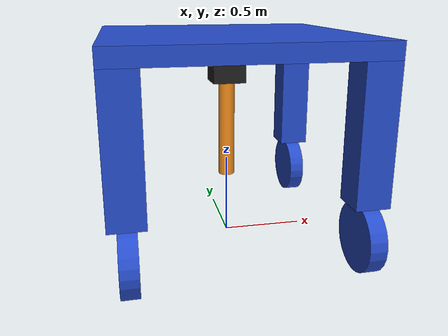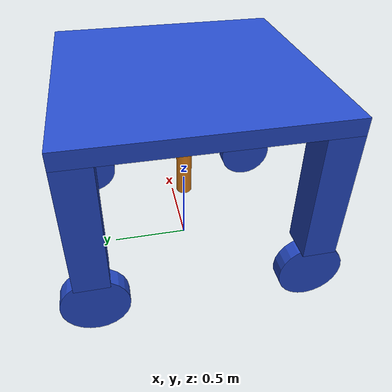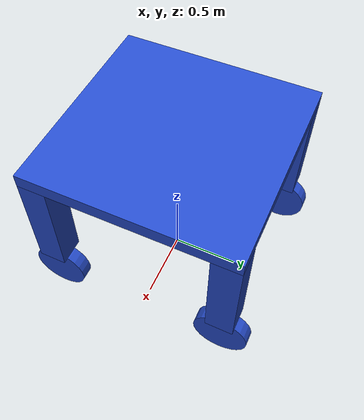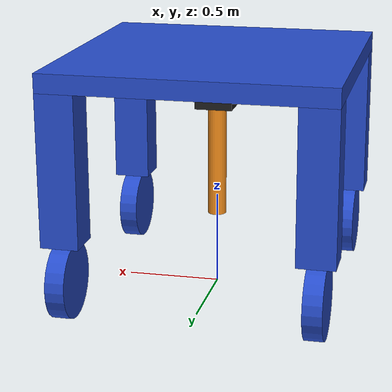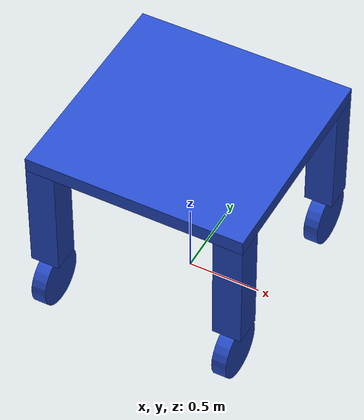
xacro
<?xml version="1.0"?>
<robot xmlns:xacro="http://www.ros.org/wiki/xacro" name="robot">
	<xacro:include filename="inertia.urdf.xacro" />
	<xacro:include filename="materials.urdf.xacro" />

	<link name="world"></link>

	<xacro:property name="height" value="1.2" />
	<joint name="base_joint" type="fixed">
		<origin xyz="0 0 1.2" rpy="0 0 0" />
		<parent link="world" />
		<child link="base_link" />
	</joint>

	<xacro:property name="base_w" value="1.5" />
	<xacro:property name="base_l" value="1.5" />
	<xacro:property name="base_h" value="0.1" />
	<xacro:property name="base_m" value="5" />
	<link name="base_link">
		<visual>
			<origin xyz="0 0 ${base_h/2}" rpy="0 0 0" />
			<geometry>
				<box size="${base_w} ${base_l} ${base_h}" />
			</geometry>
			<material name="blue"/>
		</visual>
		<collision>
			<origin xyz="0 0 ${base_h/2}" rpy="0 0 0" />
			<geometry>
				<box size="${base_w} ${base_l} ${base_h}" />
			</geometry>
		</collision>
		<inertial>
			<origin xyz="0 0 ${base_h/2}" rpy="0 0 0" />
			<mass value="${base_m}" />
			<xacro:box_inertia m="${base_m}" x="${base_w}" y="${base_l}" z="${base_h}" />
		</inertial>
	</link>

	<joint name="first_axis_joint" type="prismatic">
		<origin xyz="0 0 0" rpy="0 0 0" />
		<parent link="base_link" />
		<child link="first_axis_link" />
		<axis xyz="0 1 0" />
		<limit lower="${-base_l/2}" upper="${base_l/2}" velocity="100" effort="100" />
	</joint>

	<xacro:property name="first_w" value="0.2" />
	<xacro:property name="first_l" value="0.2" />
	<xacro:property name="first_h" value="0.2" />
	<xacro:property name="first_m" value="0.5" />
	<link name="first_axis_link">
		<visual>
			<origin xyz="0 0 ${-first_h/2}" rpy="0 0 0" />
			<geometry>
				<box size="${first_w} ${first_l} ${first_h}" />
			</geometry>
			<material name="black"/>
		</visual>
		<collision>
			<origin xyz="0 0 ${-first_h}" rpy="0 0 0" />
			<geometry>
				<box size="${first_w} ${first_l} ${first_h}" />
			</geometry>
		</collision>
		<inertial>
			<origin xyz="0 0 ${-first_h/2}" rpy="0 0 0" />
			<mass value="${first_m}" />
			<xacro:box_inertia m="${first_m}" x="${first_w}" y="${first_l}" z="${first_h}" />
		</inertial>
	</link>

	<joint name="second_axis_joint" type="revolute">
		<origin xyz="0 0 ${-first_h}" rpy="0 0 0" />
		<parent link="first_axis_link" />
		<child link="second_axis_link" />
		<axis xyz="0 1 0" />
		<limit lower="${-pi/2}" upper="${pi/2}" velocity="100" effort="100" />
	</joint>

	<xacro:property name="arm_length" value="0.6" />
	<xacro:property name="arm_radius" value="0.05" />
	<xacro:property name="arm_mass" value="1" />
	<link name="second_axis_link">
		<visual>
			<origin xyz="0 0 ${-arm_length/2}" rpy="0 0 0" />
			<geometry>
				<cylinder length="${arm_length}" radius="${arm_radius}" />
			</geometry>
			<material name="orange"/>
		</visual>
		<collision>
			<origin xyz="0 0 ${-arm_length/2}" rpy="0 0 0" />
			<geometry>
				<cylinder length="${arm_length}" radius="${arm_radius}" />
			</geometry>
		</collision>
		<inertial>
			<origin xyz="0 0 ${-arm_length/2}" rpy="0 0 0" />
			<mass value="${arm_mass}" />
			<xacro:cylinder_inertia m="${arm_mass}" r="${arm_radius}" h="${arm_length}" />
		</inertial>
	</link>

	<xacro:property name="arm2_radius" value="0.03" />
	<xacro:property name="arm2_length" value="0.5" />
	<xacro:property name="arm2_mass" value="0.5" />
	<joint name="third_axis_joint" type="prismatic">
		<origin xyz="0 0 ${-arm_length}" rpy="0 0 0" />
		<parent link="second_axis_link" />
		<child link="third_axis_link" />
		<axis xyz="0 0 -1" />
		<limit lower="0" upper="${arm2_length}" velocity="100" effort="100" />
	</joint>

	<link name="third_axis_link">
		<visual>
			<origin xyz="0 0 ${arm2_length/2}" rpy="0 0 0" />
			<geometry>
				<cylinder length="${arm2_length}" radius="${arm2_radius}" />
			</geometry>
			<material name="orange"/>
		</visual>
		<collision>
			<origin xyz="0 0 ${arm2_length/2}" rpy="0 0 0" />
			<geometry>
				<cylinder length="${arm2_length}" radius="${arm2_radius}" />
			</geometry>
		</collision>
		<inertial>
			<origin xyz="0 0 ${arm2_length/2}" rpy="0 0 0" />
			<mass value="${arm2_mass}" />
			<xacro:cylinder_inertia m="${arm2_mass}" r="${arm2_radius}" h="${arm2_length}" />
		</inertial>
	</link>

	<xacro:property name="top_w" value="0.2" />
	<xacro:property name="top_l" value="0.2" />
	<xacro:property name="wheel_r" value="0.2" />
	<xacro:property name="wheel_l" value="0.1" />
	<xacro:property name="wheel_m" value="5" />
	<xacro:property name="top_h" value="${height-2*wheel_r}" />
	<xacro:macro name="wheel" params="prefix x y">
		<joint name="${prefix}_wheel_joint" type="fixed">
			<parent link="base_link" />
			<child link="${prefix}_wheel_link" />
			<origin xyz="${x} ${y} 0" rpy="0 0 0" />
		</joint>

		<link name="${prefix}_wheel_link">
			<visual>
				<origin xyz="0 0 ${-top_h/2}" rpy="0 0 0"/>
				<geometry>
					<box size="${top_w} ${top_l} ${top_h}" />
				</geometry>
				<material name="blue"/>
			</visual>
			<visual>
				<origin xyz="0 0 ${-top_h-wheel_r}" rpy="0 ${pi/2} 0"/>
				<geometry>
					<cylinder radius="${wheel_r}" length="${wheel_l}" />
				</geometry>
				<material name="blue"/>
			</visual>
			<collision>
				<origin xyz="0 0 ${-top_h/2-wheel_r}" rpy="0 0 0"/>
				<geometry>
					<box size="${top_w} ${2*wheel_r} ${top_h+2*wheel_r}" />
				</geometry>
			</collision>
			<inertial>
				<origin xyz="0 0 ${-top_h/2-wheel_r}" rpy="0 0 0"/>
				<mass value="${wheel_m}" />
				<xacro:box_inertia m="${wheel_m}" x="${top_w}" y="${2*wheel_r}" z="${top_h+2*wheel_r}" />
			</inertial>
		</link>
	</xacro:macro>

	<xacro:wheel prefix="fl" x="${-base_w/2+top_w/2}" y="${base_l/2-top_l/2}" />
	<xacro:wheel prefix="bl" x="${-base_w/2+top_w/2}" y="${-base_l/2+top_l/2}" />
	<xacro:wheel prefix="fr" x="${base_w/2-top_w/2}" y="${base_l/2-top_l/2}" />
	<xacro:wheel prefix="br" x="${base_w/2-top_w/2}" y="${-base_l/2+top_l/2}" />
</robot>
